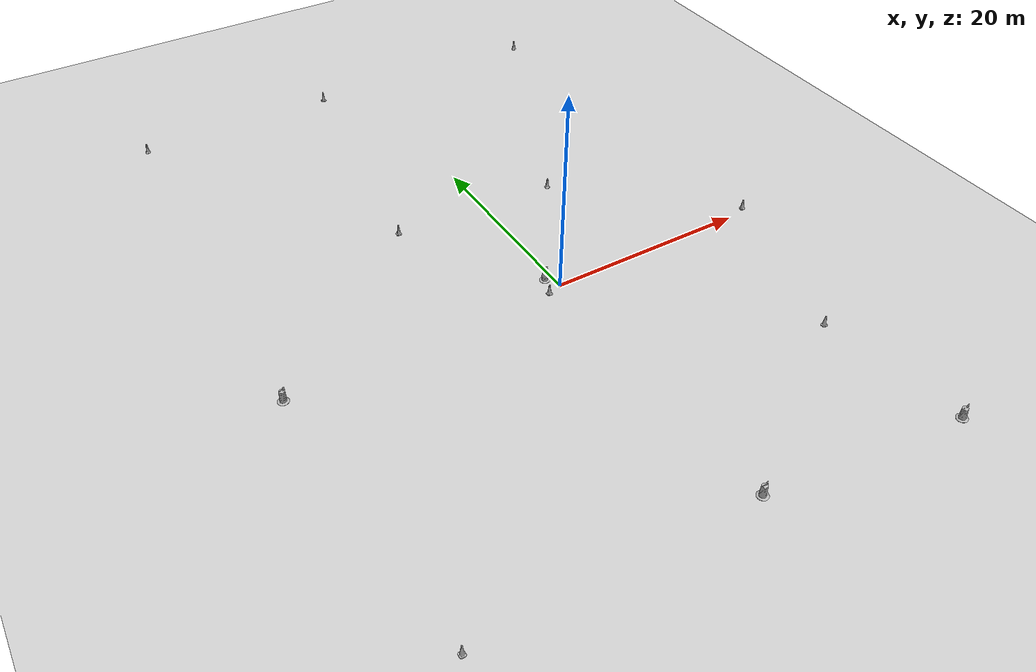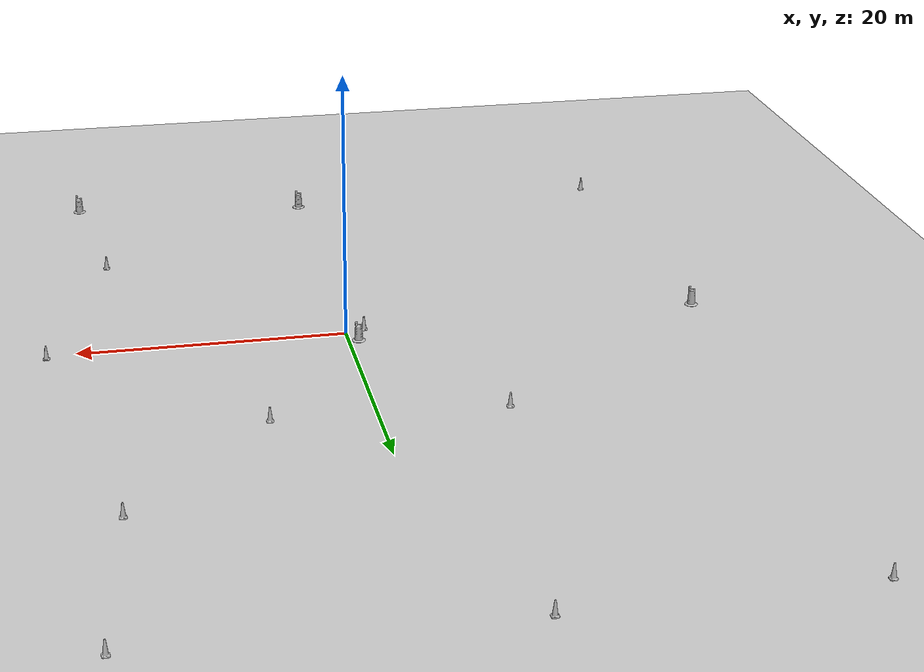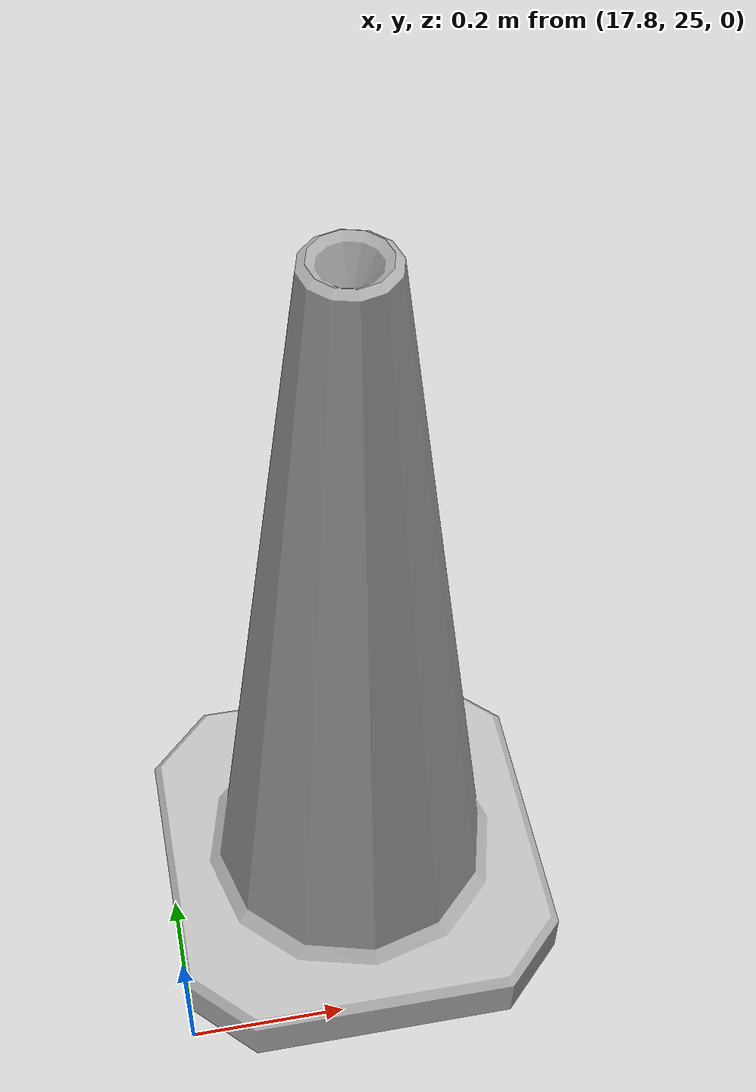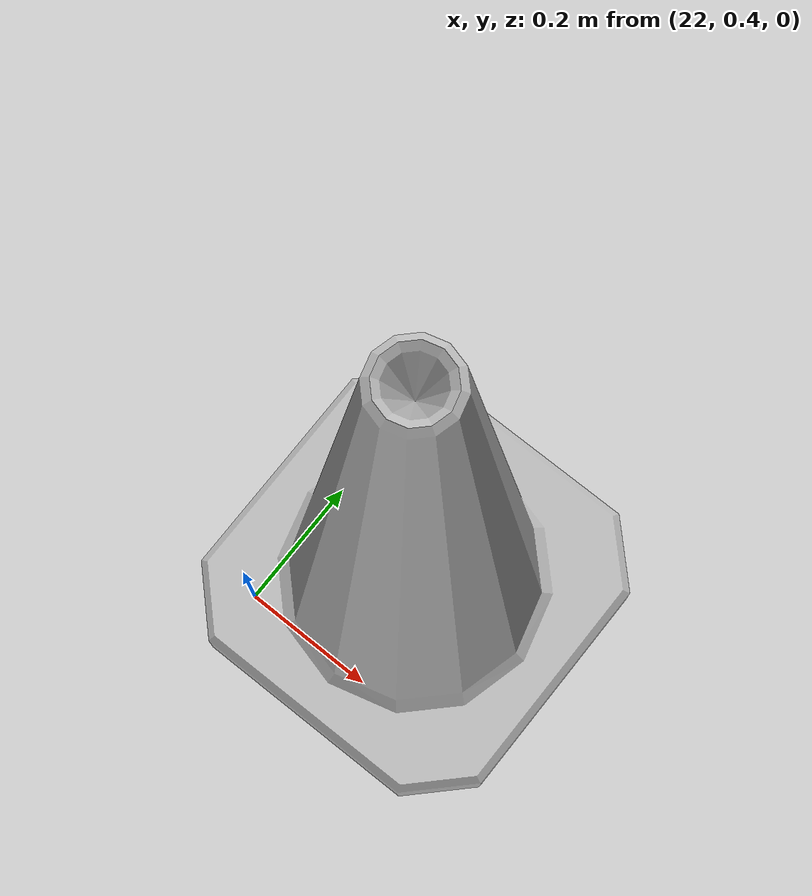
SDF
<sdf version="1.7">
 <world name="default">
  <light name="sun" type="directional">
   <pose>0 0 10 0 -0 0</pose>
   <diffuse>0.8 0.8 0.8 1</diffuse>
   <specular>0.2 0.2 0.2 1</specular>
   <attenuation>
    <range>1000</range>
    <constant>0.9</constant>
    <linear>0.01</linear>
    <quadratic>0.001</quadratic>
   </attenuation>
   <direction>-0.5 0.1 -0.9</direction>
   <spot><inner_angle>0</inner_angle><outer_angle>0</outer_angle><falloff>0</falloff></spot>
  </light>
  <model name="ground_plane">
   <static>1</static>
   <link name="link">
    <collision name="collision">
     <geometry><plane><normal>0 0 1</normal><size>100 100</size></plane></geometry>
     <surface>
      <contact><collide_bitmask>65535</collide_bitmask></contact>
      <friction><ode><mu>100</mu><mu2>50</mu2></ode></friction>
     </surface>
    </collision>
    <visual name="visual">
     <cast_shadows>0</cast_shadows>
     <geometry><plane><normal>0 0 1</normal><size>100 100</size></plane></geometry>
     <material>
      <script><uri>file://media/materials/scripts/gazebo.material</uri><name>Gazebo/Grey</name></script>
     </material>
    </visual>
   </link>
  </model>
  <gravity>0 0 -9.8</gravity>
  <magnetic_field>6e-06 2.3e-05 -4.2e-05</magnetic_field>
  <atmosphere type="adiabatic"/>
  <physics type="ode">
   <max_step_size>0.001</max_step_size>
   <real_time_factor>1</real_time_factor>
   <real_time_update_rate>1000</real_time_update_rate>
  </physics>
  <scene><ambient>0.4 0.4 0.4 1</ambient><background>0.7 0.7 0.7 1</background><shadows>1</shadows></scene>
  <spherical_coordinates>
   <surface_model>EARTH_WGS84</surface_model>
   <latitude_deg>0</latitude_deg>
   <longitude_deg>0</longitude_deg>
   <elevation>0</elevation>
   <heading_deg>0</heading_deg>
  </spherical_coordinates>
  <model name="Construction Barrel">
   <link name="link">
    <inertial>
     <pose>0 0 0.4 0 -0 0</pose>
     <mass>500</mass>
     <inertia><ixx>51.2096</ixx><iyy>51.2096</iyy><izz>25</izz><ixy>0</ixy><ixz>0</ixz><iyz>0</iyz></inertia>
    </inertial>
    <collision name="collision">
     <geometry><mesh><uri>model://construction_barrel/meshes/construction_barrel.dae</uri></mesh></geometry>
    </collision>
    <visual name="visual">
     <geometry><mesh><uri>model://construction_barrel/meshes/construction_barrel.dae</uri></mesh></geometry>
    </visual>
   </link>
   <pose>-0.756337 1.39221 -2e-06 7e-06 -2e-06 -3.9e-05</pose>
  </model>
  <model name="Construction Barrel_0">
   <link name="link">
    <inertial>
     <pose>0 0 0.4 0 -0 0</pose>
     <mass>500</mass>
     <inertia><ixx>51.2096</ixx><iyy>51.2096</iyy><izz>25</izz><ixy>0</ixy><ixz>0</ixz><iyz>0</iyz></inertia>
    </inertial>
    <collision name="collision">
     <geometry><mesh><uri>model://construction_barrel/meshes/construction_barrel.dae</uri></mesh></geometry>
    </collision>
    <visual name="visual">
     <geometry><mesh><uri>model://construction_barrel/meshes/construction_barrel.dae</uri></mesh></geometry>
    </visual>
   </link>
   <pose>18.5968 -29.9999 -0 1e-06 -1e-06 -3.5e-05</pose>
  </model>
  <model name="Construction Cone">
   <link name="link">
    <collision name="collision">
     <geometry>
      <mesh><scale>10 10 10</scale><uri>model://construction_cone/meshes/construction_cone.dae</uri></mesh>
     </geometry>
    </collision>
    <visual name="visual">
     <geometry>
      <mesh><scale>10 10 10</scale><uri>model://construction_cone/meshes/construction_cone.dae</uri></mesh>
     </geometry>
    </visual>
    <inertial>
     <inertia><ixx>1</ixx><ixy>0</ixy><ixz>0</ixz><iyy>1</iyy><iyz>0</iyz><izz>1</izz></inertia>
     <mass>1</mass>
    </inertial>
   </link>
   <pose>-9.21918 14.4108 -0 0 -0 0</pose>
  </model>
  <model name="Construction Cone_0">
   <link name="link">
    <collision name="collision">
     <geometry>
      <mesh><scale>10 10 10</scale><uri>model://construction_cone/meshes/construction_cone.dae</uri></mesh>
     </geometry>
    </collision>
    <visual name="visual">
     <geometry>
      <mesh><scale>10 10 10</scale><uri>model://construction_cone/meshes/construction_cone.dae</uri></mesh>
     </geometry>
    </visual>
    <inertial>
     <inertia><ixx>1</ixx><ixy>0</ixy><ixz>0</ixz><iyy>1</iyy><iyz>0</iyz><izz>1</izz></inertia>
     <mass>1</mass>
    </inertial>
   </link>
   <pose>7.41846 13.6315 -0 0 -0 0</pose>
  </model>
  <model name="Construction Cone_1">
   <link name="link">
    <collision name="collision">
     <geometry>
      <mesh><scale>10 10 10</scale><uri>model://construction_cone/meshes/construction_cone.dae</uri></mesh>
     </geometry>
    </collision>
    <visual name="visual">
     <geometry>
      <mesh><scale>10 10 10</scale><uri>model://construction_cone/meshes/construction_cone.dae</uri></mesh>
     </geometry>
    </visual>
    <inertial>
     <inertia><ixx>1</ixx><ixy>0</ixy><ixz>0</ixz><iyy>1</iyy><iyz>0</iyz><izz>1</izz></inertia>
     <mass>1</mass>
    </inertial>
   </link>
   <pose>18.049 25.2115 -0 0 -0 0</pose>
  </model>
  <model name="Construction Cone_2">
   <link name="link">
    <collision name="collision">
     <geometry>
      <mesh><scale>10 10 10</scale><uri>model://construction_cone/meshes/construction_cone.dae</uri></mesh>
     </geometry>
    </collision>
    <visual name="visual">
     <geometry>
      <mesh><scale>10 10 10</scale><uri>model://construction_cone/meshes/construction_cone.dae</uri></mesh>
     </geometry>
    </visual>
    <inertial>
     <inertia><ixx>1</ixx><ixy>0</ixy><ixz>0</ixz><iyy>1</iyy><iyz>0</iyz><izz>1</izz></inertia>
     <mass>1</mass>
    </inertial>
   </link>
   <pose>22.1697 0.557622 -0 0 -0 0</pose>
  </model>
  <model name="Construction Cone_3">
   <link name="link">
    <collision name="collision">
     <geometry>
      <mesh><scale>10 10 10</scale><uri>model://construction_cone/meshes/construction_cone.dae</uri></mesh>
     </geometry>
    </collision>
    <visual name="visual">
     <geometry>
      <mesh><scale>10 10 10</scale><uri>model://construction_cone/meshes/construction_cone.dae</uri></mesh>
     </geometry>
    </visual>
    <inertial>
     <inertia><ixx>1</ixx><ixy>0</ixy><ixz>0</ixz><iyy>1</iyy><iyz>0</iyz><izz>1</izz></inertia>
     <mass>1</mass>
    </inertial>
   </link>
   <pose>-5.36654 41.2646 -0 1e-06 -0 0</pose>
  </model>
  <model name="Construction Cone_4">
   <link name="link">
    <collision name="collision">
     <geometry>
      <mesh><scale>10 10 10</scale><uri>model://construction_cone/meshes/construction_cone.dae</uri></mesh>
     </geometry>
    </collision>
    <visual name="visual">
     <geometry>
      <mesh><scale>10 10 10</scale><uri>model://construction_cone/meshes/construction_cone.dae</uri></mesh>
     </geometry>
    </visual>
    <inertial>
     <inertia><ixx>1</ixx><ixy>0</ixy><ixz>0</ixz><iyy>1</iyy><iyz>0</iyz><izz>1</izz></inertia>
     <mass>1</mass>
    </inertial>
   </link>
   <pose>-1.45651 -0.461519 -0 -0 -0 -0</pose>
  </model>
  <model name="Construction Cone_5">
   <link name="link">
    <collision name="collision">
     <geometry>
      <mesh><scale>10 10 10</scale><uri>model://construction_cone/meshes/construction_cone.dae</uri></mesh>
     </geometry>
    </collision>
    <visual name="visual">
     <geometry>
      <mesh><scale>10 10 10</scale><uri>model://construction_cone/meshes/construction_cone.dae</uri></mesh>
     </geometry>
    </visual>
    <inertial>
     <inertia><ixx>1</ixx><ixy>0</ixy><ixz>0</ixz><iyy>1</iyy><iyz>0</iyz><izz>1</izz></inertia>
     <mass>1</mass>
    </inertial>
   </link>
   <pose>16.9485 -16.308 -0 0 -0 0</pose>
  </model>
  <model name="Construction Cone_6">
   <link name="link">
    <collision name="collision">
     <geometry>
      <mesh><scale>10 10 10</scale><uri>model://construction_cone/meshes/construction_cone.dae</uri></mesh>
     </geometry>
    </collision>
    <visual name="visual">
     <geometry>
      <mesh><scale>10 10 10</scale><uri>model://construction_cone/meshes/construction_cone.dae</uri></mesh>
     </geometry>
    </visual>
    <inertial>
     <inertia><ixx>1</ixx><ixy>0</ixy><ixz>0</ixz><iyy>1</iyy><iyz>0</iyz><izz>1</izz></inertia>
     <mass>1</mass>
    </inertial>
   </link>
   <pose>19.9047 40.5929 -0 0 -1e-06 0</pose>
  </model>
  <model name="Construction Cone_7">
   <link name="link">
    <collision name="collision">
     <geometry>
      <mesh><scale>10 10 10</scale><uri>model://construction_cone/meshes/construction_cone.dae</uri></mesh>
     </geometry>
    </collision>
    <visual name="visual">
     <geometry>
      <mesh><scale>10 10 10</scale><uri>model://construction_cone/meshes/construction_cone.dae</uri></mesh>
     </geometry>
    </visual>
    <inertial>
     <inertia><ixx>1</ixx><ixy>0</ixy><ixz>0</ixz><iyy>1</iyy><iyz>0</iyz><izz>1</izz></inertia>
     <mass>1</mass>
    </inertial>
   </link>
   <pose>-25.7579 -27.499 -0 0 -0 0</pose>
  </model>
  <model name="Construction Cone_8">
   <link name="link">
    <collision name="collision">
     <geometry>
      <mesh><scale>10 10 10</scale><uri>model://construction_cone/meshes/construction_cone.dae</uri></mesh>
     </geometry>
    </collision>
    <visual name="visual">
     <geometry>
      <mesh><scale>10 10 10</scale><uri>model://construction_cone/meshes/construction_cone.dae</uri></mesh>
     </geometry>
    </visual>
    <inertial>
     <inertia><ixx>1</ixx><ixy>0</ixy><ixz>0</ixz><iyy>1</iyy><iyz>0</iyz><izz>1</izz></inertia>
     <mass>1</mass>
    </inertial>
   </link>
   <pose>-25.9116 40.9878 -0 0 -0 0</pose>
  </model>
  <model name="Construction Barrel_1">
   <link name="link">
    <inertial>
     <pose>0 0 0.4 0 -0 0</pose>
     <mass>500</mass>
     <inertia><ixx>51.2096</ixx><iyy>51.2096</iyy><izz>25</izz><ixy>0</ixy><ixz>0</ixz><iyz>0</iyz></inertia>
    </inertial>
    <collision name="collision">
     <geometry><mesh><uri>model://construction_barrel/meshes/construction_barrel.dae</uri></mesh></geometry>
    </collision>
    <visual name="visual">
     <geometry><mesh><uri>model://construction_barrel/meshes/construction_barrel.dae</uri></mesh></geometry>
    </visual>
   </link>
   <pose>-27.2197 -0.54369 -0 1e-06 -1e-06 -3.2e-05</pose>
  </model>
  <model name="Construction Barrel_2">
   <link name="link">
    <inertial>
     <pose>0 0 0.4 0 -0 0</pose>
     <mass>500</mass>
     <inertia><ixx>51.2096</ixx><iyy>51.2096</iyy><izz>25</izz><ixy>0</ixy><ixz>0</ixz><iyz>0</iyz></inertia>
    </inertial>
    <collision name="collision">
     <geometry><mesh><uri>model://construction_barrel/meshes/construction_barrel.dae</uri></mesh></geometry>
    </collision>
    <visual name="visual">
     <geometry><mesh><uri>model://construction_barrel/meshes/construction_barrel.dae</uri></mesh></geometry>
    </visual>
   </link>
   <pose>-0.279489 -27.7024 -2e-06 -7e-06 -4e-06 -2.7e-05</pose>
  </model>
 </world>
</sdf>
